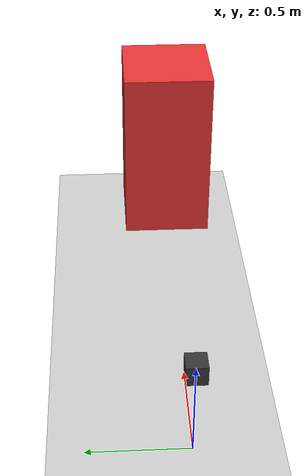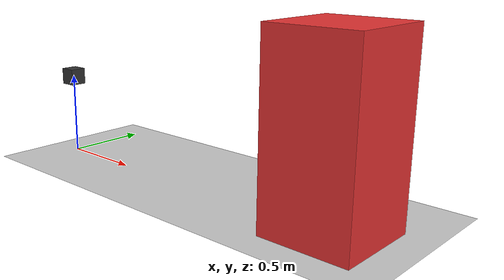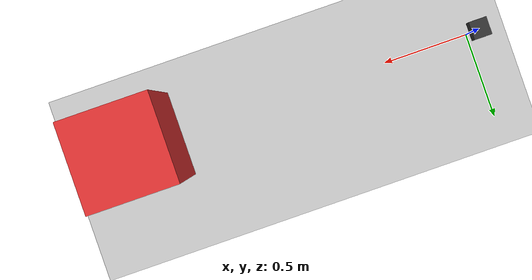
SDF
<?xml version="1.0" ?>
<sdf version="1.10">
  <world name="camera_world">
    <physics name="1ms" type="ignored">
      <max_step_size>0.001</max_step_size>
      <real_time_factor>1.0</real_time_factor>
    </physics>

    <plugin filename="gz-sim-physics-system" name="gz::sim::systems::Physics"/>
    <plugin filename="gz-sim-user-commands-system" name="gz::sim::systems::UserCommands"/>
    <plugin filename="gz-sim-scene-broadcaster-system" name="gz::sim::systems::SceneBroadcaster"/>
    <plugin filename="gz-sim-sensors-system" name="gz::sim::systems::Sensors">
      <render_engine>ogre2</render_engine>
    </plugin>

    <light type="directional" name="sun">
      <cast_shadows>true</cast_shadows>
      <pose>0 0 10 0 0 0</pose>
      <diffuse>1 1 1 1</diffuse>
      <specular>0.2 0.2 0.2 1</specular>
      <direction>-0.5 0.1 -0.9</direction>
    </light>

    <model name="ground_plane">
      <static>true</static>
      <link name="link">
        <collision name="collision">
          <geometry><plane><normal>0 0 1</normal><size>100 100</size></plane></geometry>
        </collision>
        <visual name="visual">
          <geometry><plane><normal>0 0 1</normal><size>100 100</size></plane></geometry>
          <material>
            <ambient>0.8 0.8 0.8 1</ambient>
            <diffuse>0.8 0.8 0.8 1</diffuse>
          </material>
        </visual>
      </link>
    </model>

    <!-- The camera sits on a small static stand and looks down +X. -->
    <model name="camera">
      <static>true</static>
      <pose>0 0 0.5 0 0 0</pose>
      <link name="camera_link">
        <visual name="visual">
          <geometry><box><size>0.1 0.1 0.1</size></box></geometry>
          <material>
            <ambient>0.2 0.2 0.2 1</ambient>
            <diffuse>0.2 0.2 0.2 1</diffuse>
          </material>
        </visual>
        <sensor name="camera" type="camera">
          <pose>0.05 0 0 0 0 0</pose>
          <topic>camera</topic>
          <update_rate>15</update_rate>
          <always_on>1</always_on>
          <visualize>true</visualize>
          <camera>
            <horizontal_fov>1.047</horizontal_fov>
            <image>
              <width>640</width>
              <height>480</height>
              <format>R8G8B8</format>
            </image>
            <clip><near>0.1</near><far>100</far></clip>
          </camera>
        </sensor>
      </link>
    </model>

    <!-- Something for the camera to actually see. -->
    <model name="target_box">
      <static>true</static>
      <pose>2 0 0.5 0 0 0</pose>
      <link name="link">
        <collision name="collision">
          <geometry><box><size>0.5 0.5 1.0</size></box></geometry>
        </collision>
        <visual name="visual">
          <geometry><box><size>0.5 0.5 1.0</size></box></geometry>
          <material>
            <ambient>0.9 0.2 0.2 1</ambient>
            <diffuse>0.9 0.2 0.2 1</diffuse>
          </material>
        </visual>
      </link>
    </model>
  </world>
</sdf>
